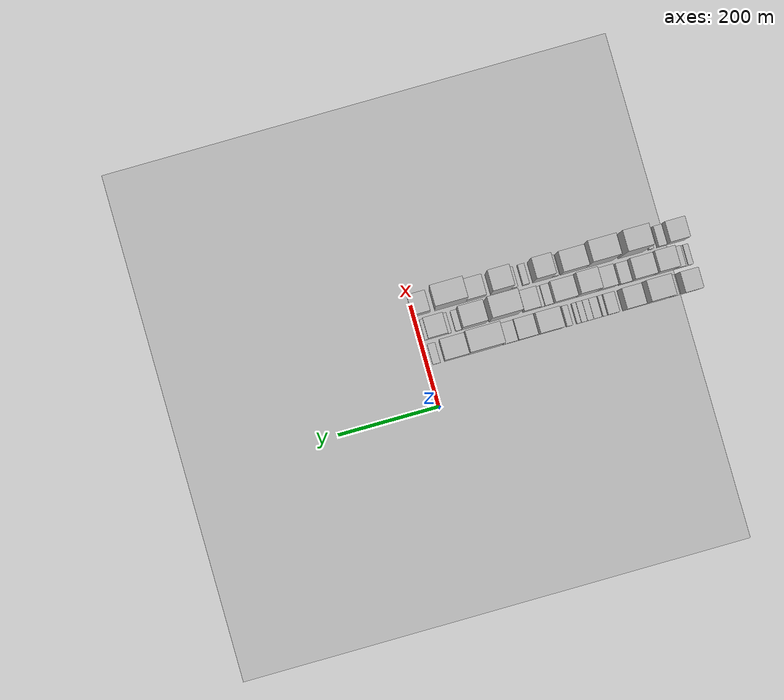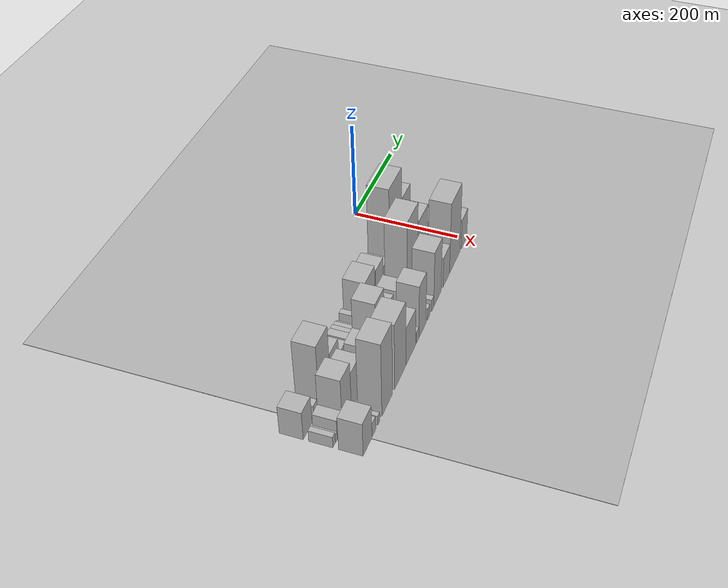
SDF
<sdf version="1.6">
 <world name="default">
  <include><name>ground_plane_1</name><uri>model://HANNAS_ground_plane</uri></include>
  <include>
   <name>ground_plane_2</name>
   <uri>model://HANNAS_ground_plane</uri>
   <pose>100 0 0  0 0 0</pose>
  </include>
  <model name="building_1">
   <static>1</static>
   <pose>100.0000 -518.3158 0 0.000000 0.000000 0.000000</pose>
   <link name="link">
    <pose>0 0 30.00 0 0 0</pose>
    <collision name="collision"><geometry><box><size>40.0000 35.3684 60.0000</size></box></geometry></collision>
    <visual name="visual">
     <cast_shadows>0</cast_shadows>
     <geometry><box><size>40.0000 35.3684 60.0000</size></box></geometry>
     <material>
      <script>
       <uri>model://HANNAS_wall/materials/scripts</uri>
       <uri>model://HANNAS_wall/materials/textures</uri>
       <name>vrc/HANNAS_wall</name>
      </script>
     </material>
    </visual>
   </link>
  </model>
  <model name="building_2">
   <static>1</static>
   <pose>100.0000 -485.6401 0 0.000000 0.000000 0.000000</pose>
   <link name="link">
    <pose>0 0 15.00 0 0 0</pose>
    <collision name="collision"><geometry><box><size>40.0000 15.9831 30.0000</size></box></geometry></collision>
    <visual name="visual">
     <cast_shadows>0</cast_shadows>
     <geometry><box><size>40.0000 15.9831 30.0000</size></box></geometry>
     <material>
      <script>
       <uri>model://HANNAS_wall/materials/scripts</uri>
       <uri>model://HANNAS_wall/materials/textures</uri>
       <name>vrc/HANNAS_wall</name>
      </script>
     </material>
    </visual>
   </link>
  </model>
  <model name="building_3">
   <static>1</static>
   <pose>100.0000 -447.0525 0 0.000000 0.000000 0.000000</pose>
   <link name="link">
    <pose>0 0 69.00 0 0 0</pose>
    <collision name="collision"><geometry><box><size>40.0000 47.1920 138.0000</size></box></geometry></collision>
    <visual name="visual">
     <cast_shadows>0</cast_shadows>
     <geometry><box><size>40.0000 47.1920 138.0000</size></box></geometry>
     <material>
      <script>
       <uri>model://HANNAS_wall/materials/scripts</uri>
       <uri>model://HANNAS_wall/materials/textures</uri>
       <name>vrc/HANNAS_wall</name>
      </script>
     </material>
    </visual>
   </link>
  </model>
  <model name="building_4">
   <static>1</static>
   <pose>100.0000 -404.3314 0 0.000000 0.000000 0.000000</pose>
   <link name="link">
    <pose>0 0 37.50 0 0 0</pose>
    <collision name="collision"><geometry><box><size>40.0000 38.2501 75.0000</size></box></geometry></collision>
    <visual name="visual">
     <cast_shadows>0</cast_shadows>
     <geometry><box><size>40.0000 38.2501 75.0000</size></box></geometry>
     <material>
      <script>
       <uri>model://HANNAS_wall/materials/scripts</uri>
       <uri>model://HANNAS_wall/materials/textures</uri>
       <name>vrc/HANNAS_wall</name>
      </script>
     </material>
    </visual>
   </link>
  </model>
  <model name="building_5">
   <static>1</static>
   <pose>100.0000 -364.0573 0 0.000000 0.000000 0.000000</pose>
   <link name="link">
    <pose>0 0 19.50 0 0 0</pose>
    <collision name="collision"><geometry><box><size>40.0000 22.2982 39.0000</size></box></geometry></collision>
    <visual name="visual">
     <cast_shadows>0</cast_shadows>
     <geometry><box><size>40.0000 22.2982 39.0000</size></box></geometry>
     <material>
      <script>
       <uri>model://HANNAS_wall/materials/scripts</uri>
       <uri>model://HANNAS_wall/materials/textures</uri>
       <name>vrc/HANNAS_wall</name>
      </script>
     </material>
    </visual>
   </link>
  </model>
  <model name="building_6">
   <static>1</static>
   <pose>100.0000 -348.7024 0 0.000000 0.000000 0.000000</pose>
   <link name="link">
    <pose>0 0 10.50 0 0 0</pose>
    <collision name="collision"><geometry><box><size>40.0000 8.4116 21.0000</size></box></geometry></collision>
    <visual name="visual">
     <cast_shadows>0</cast_shadows>
     <geometry><box><size>40.0000 8.4116 21.0000</size></box></geometry>
     <material>
      <script>
       <uri>model://HANNAS_wall/materials/scripts</uri>
       <uri>model://HANNAS_wall/materials/textures</uri>
       <name>vrc/HANNAS_wall</name>
      </script>
     </material>
    </visual>
   </link>
  </model>
  <model name="building_7">
   <static>1</static>
   <pose>100.0000 -333.5226 0 0.000000 0.000000 0.000000</pose>
   <link name="link">
    <pose>0 0 15.00 0 0 0</pose>
    <collision name="collision"><geometry><box><size>40.0000 15.9480 30.0000</size></box></geometry></collision>
    <visual name="visual">
     <cast_shadows>0</cast_shadows>
     <geometry><box><size>40.0000 15.9480 30.0000</size></box></geometry>
     <material>
      <script>
       <uri>model://HANNAS_wall/materials/scripts</uri>
       <uri>model://HANNAS_wall/materials/textures</uri>
       <name>vrc/HANNAS_wall</name>
      </script>
     </material>
    </visual>
   </link>
  </model>
  <model name="building_8">
   <static>1</static>
   <pose>100.0000 -319.4158 0 0.000000 0.000000 0.000000</pose>
   <link name="link">
    <pose>0 0 13.50 0 0 0</pose>
    <collision name="collision"><geometry><box><size>40.0000 12.2657 27.0000</size></box></geometry></collision>
    <visual name="visual">
     <cast_shadows>0</cast_shadows>
     <geometry><box><size>40.0000 12.2657 27.0000</size></box></geometry>
     <material>
      <script>
       <uri>model://HANNAS_wall/materials/scripts</uri>
       <uri>model://HANNAS_wall/materials/textures</uri>
       <name>vrc/HANNAS_wall</name>
      </script>
     </material>
    </visual>
   </link>
  </model>
  <model name="building_9">
   <static>1</static>
   <pose>100.0000 -307.5187 0 0.000000 0.000000 0.000000</pose>
   <link name="link">
    <pose>0 0 12.00 0 0 0</pose>
    <collision name="collision"><geometry><box><size>40.0000 11.5283 24.0000</size></box></geometry></collision>
    <visual name="visual">
     <cast_shadows>0</cast_shadows>
     <geometry><box><size>40.0000 11.5283 24.0000</size></box></geometry>
     <material>
      <script>
       <uri>model://HANNAS_wall/materials/scripts</uri>
       <uri>model://HANNAS_wall/materials/textures</uri>
       <name>vrc/HANNAS_wall</name>
      </script>
     </material>
    </visual>
   </link>
  </model>
  <model name="building_10">
   <static>1</static>
   <pose>100.0000 -297.6573 0 0.000000 0.000000 0.000000</pose>
   <link name="link">
    <pose>0 0 9.00 0 0 0</pose>
    <collision name="collision"><geometry><box><size>40.0000 8.1947 18.0000</size></box></geometry></collision>
    <visual name="visual">
     <cast_shadows>0</cast_shadows>
     <geometry><box><size>40.0000 8.1947 18.0000</size></box></geometry>
     <material>
      <script>
       <uri>model://HANNAS_wall/materials/scripts</uri>
       <uri>model://HANNAS_wall/materials/textures</uri>
       <name>vrc/HANNAS_wall</name>
      </script>
     </material>
    </visual>
   </link>
  </model>
  <model name="building_11">
   <static>1</static>
   <pose>100.0000 -278.9061 0 0.000000 0.000000 0.000000</pose>
   <link name="link">
    <pose>0 0 13.50 0 0 0</pose>
    <collision name="collision"><geometry><box><size>40.0000 11.3076 27.0000</size></box></geometry></collision>
    <visual name="visual">
     <cast_shadows>0</cast_shadows>
     <geometry><box><size>40.0000 11.3076 27.0000</size></box></geometry>
     <material>
      <script>
       <uri>model://HANNAS_wall/materials/scripts</uri>
       <uri>model://HANNAS_wall/materials/textures</uri>
       <name>vrc/HANNAS_wall</name>
      </script>
     </material>
    </visual>
   </link>
  </model>
  <model name="building_12">
   <static>1</static>
   <pose>100.0000 -240.6720 0 0.000000 0.000000 0.000000</pose>
   <link name="link">
    <pose>0 0 43.50 0 0 0</pose>
    <collision name="collision"><geometry><box><size>40.0000 47.1606 87.0000</size></box></geometry></collision>
    <visual name="visual">
     <cast_shadows>0</cast_shadows>
     <geometry><box><size>40.0000 47.1606 87.0000</size></box></geometry>
     <material>
      <script>
       <uri>model://HANNAS_wall/materials/scripts</uri>
       <uri>model://HANNAS_wall/materials/textures</uri>
       <name>vrc/HANNAS_wall</name>
      </script>
     </material>
    </visual>
   </link>
  </model>
  <model name="building_13">
   <static>1</static>
   <pose>100.0000 -195.0961 0 0.000000 0.000000 0.000000</pose>
   <link name="link">
    <pose>0 0 36.00 0 0 0</pose>
    <collision name="collision"><geometry><box><size>40.0000 37.9914 72.0000</size></box></geometry></collision>
    <visual name="visual">
     <cast_shadows>0</cast_shadows>
     <geometry><box><size>40.0000 37.9914 72.0000</size></box></geometry>
     <material>
      <script>
       <uri>model://HANNAS_wall/materials/scripts</uri>
       <uri>model://HANNAS_wall/materials/textures</uri>
       <name>vrc/HANNAS_wall</name>
      </script>
     </material>
    </visual>
   </link>
  </model>
  <model name="building_14">
   <static>1</static>
   <pose>100.0000 -161.9064 0 0.000000 0.000000 0.000000</pose>
   <link name="link">
    <pose>0 0 24.00 0 0 0</pose>
    <collision name="collision"><geometry><box><size>40.0000 28.3878 48.0000</size></box></geometry></collision>
    <visual name="visual">
     <cast_shadows>0</cast_shadows>
     <geometry><box><size>40.0000 28.3878 48.0000</size></box></geometry>
     <material>
      <script>
       <uri>model://HANNAS_wall/materials/scripts</uri>
       <uri>model://HANNAS_wall/materials/textures</uri>
       <name>vrc/HANNAS_wall</name>
      </script>
     </material>
    </visual>
   </link>
  </model>
  <model name="building_15">
   <static>1</static>
   <pose>100.0000 -111.3881 0 0.000000 0.000000 0.000000</pose>
   <link name="link">
    <pose>0 0 97.50 0 0 0</pose>
    <collision name="collision"><geometry><box><size>40.0000 64.6489 195.0000</size></box></geometry></collision>
    <visual name="visual">
     <cast_shadows>0</cast_shadows>
     <geometry><box><size>40.0000 64.6489 195.0000</size></box></geometry>
     <material>
      <script>
       <uri>model://HANNAS_wall/materials/scripts</uri>
       <uri>model://HANNAS_wall/materials/textures</uri>
       <name>vrc/HANNAS_wall</name>
      </script>
     </material>
    </visual>
   </link>
  </model>
  <model name="building_16">
   <static>1</static>
   <pose>100.0000 -55.8032 0 0.000000 0.000000 0.000000</pose>
   <link name="link">
    <pose>0 0 63.00 0 0 0</pose>
    <collision name="collision"><geometry><box><size>40.0000 46.5208 126.0000</size></box></geometry></collision>
    <visual name="visual">
     <cast_shadows>0</cast_shadows>
     <geometry><box><size>40.0000 46.5208 126.0000</size></box></geometry>
     <material>
      <script>
       <uri>model://HANNAS_wall/materials/scripts</uri>
       <uri>model://HANNAS_wall/materials/textures</uri>
       <name>vrc/HANNAS_wall</name>
      </script>
     </material>
    </visual>
   </link>
  </model>
  <model name="building_17">
   <static>1</static>
   <pose>100.0000 -16.9928 0 0.000000 0.000000 0.000000</pose>
   <link name="link">
    <pose>0 0 15.00 0 0 0</pose>
    <collision name="collision"><geometry><box><size>40.0000 15.0999 30.0000</size></box></geometry></collision>
    <visual name="visual">
     <cast_shadows>0</cast_shadows>
     <geometry><box><size>40.0000 15.0999 30.0000</size></box></geometry>
     <material>
      <script>
       <uri>model://HANNAS_wall/materials/scripts</uri>
       <uri>model://HANNAS_wall/materials/textures</uri>
       <name>vrc/HANNAS_wall</name>
      </script>
     </material>
    </visual>
   </link>
  </model>
  <model name="building_36">
   <static>1</static>
   <pose>149.0000 -530.9297 0 0.000000 0.000000 0.000000</pose>
   <link name="link">
    <pose>0 0 12.00 0 0 0</pose>
    <collision name="collision"><geometry><box><size>40.0000 10.1405 24.0000</size></box></geometry></collision>
    <visual name="visual">
     <cast_shadows>0</cast_shadows>
     <geometry><box><size>40.0000 10.1405 24.0000</size></box></geometry>
     <material>
      <script>
       <uri>model://HANNAS_wall/materials/scripts</uri>
       <uri>model://HANNAS_wall/materials/textures</uri>
       <name>vrc/HANNAS_wall</name>
      </script>
     </material>
    </visual>
   </link>
  </model>
  <model name="building_37">
   <static>1</static>
   <pose>149.0000 -522.1715 0 0.000000 0.000000 0.000000</pose>
   <link name="link">
    <pose>0 0 9.00 0 0 0</pose>
    <collision name="collision"><geometry><box><size>40.0000 7.3759 18.0000</size></box></geometry></collision>
    <visual name="visual">
     <cast_shadows>0</cast_shadows>
     <geometry><box><size>40.0000 7.3759 18.0000</size></box></geometry>
     <material>
      <script>
       <uri>model://HANNAS_wall/materials/scripts</uri>
       <uri>model://HANNAS_wall/materials/textures</uri>
       <name>vrc/HANNAS_wall</name>
      </script>
     </material>
    </visual>
   </link>
  </model>
  <model name="building_38">
   <static>1</static>
   <pose>149.0000 -507.6556 0 0.000000 0.000000 0.000000</pose>
   <link name="link">
    <pose>0 0 21.00 0 0 0</pose>
    <collision name="collision"><geometry><box><size>40.0000 21.6560 42.0000</size></box></geometry></collision>
    <visual name="visual">
     <cast_shadows>0</cast_shadows>
     <geometry><box><size>40.0000 21.6560 42.0000</size></box></geometry>
     <material>
      <script>
       <uri>model://HANNAS_wall/materials/scripts</uri>
       <uri>model://HANNAS_wall/materials/textures</uri>
       <name>vrc/HANNAS_wall</name>
      </script>
     </material>
    </visual>
   </link>
  </model>
  <model name="building_39">
   <static>1</static>
   <pose>149.0000 -477.2987 0 0.000000 0.000000 0.000000</pose>
   <link name="link">
    <pose>0 0 54.00 0 0 0</pose>
    <collision name="collision"><geometry><box><size>40.0000 39.0578 108.0000</size></box></geometry></collision>
    <visual name="visual">
     <cast_shadows>0</cast_shadows>
     <geometry><box><size>40.0000 39.0578 108.0000</size></box></geometry>
     <material>
      <script>
       <uri>model://HANNAS_wall/materials/scripts</uri>
       <uri>model://HANNAS_wall/materials/textures</uri>
       <name>vrc/HANNAS_wall</name>
      </script>
     </material>
    </visual>
   </link>
  </model>
  <model name="building_40">
   <static>1</static>
   <pose>149.0000 -435.8750 0 0.000000 0.000000 0.000000</pose>
   <link name="link">
    <pose>0 0 42.00 0 0 0</pose>
    <collision name="collision"><geometry><box><size>40.0000 43.7897 84.0000</size></box></geometry></collision>
    <visual name="visual">
     <cast_shadows>0</cast_shadows>
     <geometry><box><size>40.0000 43.7897 84.0000</size></box></geometry>
     <material>
      <script>
       <uri>model://HANNAS_wall/materials/scripts</uri>
       <uri>model://HANNAS_wall/materials/textures</uri>
       <name>vrc/HANNAS_wall</name>
      </script>
     </material>
    </visual>
   </link>
  </model>
  <model name="building_41">
   <static>1</static>
   <pose>149.0000 -402.3837 0 0.000000 0.000000 0.000000</pose>
   <link name="link">
    <pose>0 0 21.00 0 0 0</pose>
    <collision name="collision"><geometry><box><size>40.0000 23.1930 42.0000</size></box></geometry></collision>
    <visual name="visual">
     <cast_shadows>0</cast_shadows>
     <geometry><box><size>40.0000 23.1930 42.0000</size></box></geometry>
     <material>
      <script>
       <uri>model://HANNAS_wall/materials/scripts</uri>
       <uri>model://HANNAS_wall/materials/textures</uri>
       <name>vrc/HANNAS_wall</name>
      </script>
     </material>
    </visual>
   </link>
  </model>
  <model name="building_42">
   <static>1</static>
   <pose>149.0000 -365.0991 0 0.000000 0.000000 0.000000</pose>
   <link name="link">
    <pose>0 0 33.00 0 0 0</pose>
    <collision name="collision"><geometry><box><size>40.0000 37.3762 66.0000</size></box></geometry></collision>
    <visual name="visual">
     <cast_shadows>0</cast_shadows>
     <geometry><box><size>40.0000 37.3762 66.0000</size></box></geometry>
     <material>
      <script>
       <uri>model://HANNAS_wall/materials/scripts</uri>
       <uri>model://HANNAS_wall/materials/textures</uri>
       <name>vrc/HANNAS_wall</name>
      </script>
     </material>
    </visual>
   </link>
  </model>
  <model name="building_43">
   <static>1</static>
   <pose>149.0000 -325.8375 0 0.000000 0.000000 0.000000</pose>
   <link name="link">
    <pose>0 0 64.50 0 0 0</pose>
    <collision name="collision"><geometry><box><size>40.0000 41.1471 129.0000</size></box></geometry></collision>
    <visual name="visual">
     <cast_shadows>0</cast_shadows>
     <geometry><box><size>40.0000 41.1471 129.0000</size></box></geometry>
     <material>
      <script>
       <uri>model://HANNAS_wall/materials/scripts</uri>
       <uri>model://HANNAS_wall/materials/textures</uri>
       <name>vrc/HANNAS_wall</name>
      </script>
     </material>
    </visual>
   </link>
  </model>
  <model name="building_44">
   <static>1</static>
   <pose>149.0000 -282.9376 0 0.000000 0.000000 0.000000</pose>
   <link name="link">
    <pose>0 0 37.50 0 0 0</pose>
    <collision name="collision"><geometry><box><size>40.0000 44.6527 75.0000</size></box></geometry></collision>
    <visual name="visual">
     <cast_shadows>0</cast_shadows>
     <geometry><box><size>40.0000 44.6527 75.0000</size></box></geometry>
     <material>
      <script>
       <uri>model://HANNAS_wall/materials/scripts</uri>
       <uri>model://HANNAS_wall/materials/textures</uri>
       <name>vrc/HANNAS_wall</name>
      </script>
     </material>
    </visual>
   </link>
  </model>
  <model name="building_45">
   <static>1</static>
   <pose>149.0000 -252.1893 0 0.000000 0.000000 0.000000</pose>
   <link name="link">
    <pose>0 0 16.50 0 0 0</pose>
    <collision name="collision"><geometry><box><size>40.0000 16.8437 33.0000</size></box></geometry></collision>
    <visual name="visual">
     <cast_shadows>0</cast_shadows>
     <geometry><box><size>40.0000 16.8437 33.0000</size></box></geometry>
     <material>
      <script>
       <uri>model://HANNAS_wall/materials/scripts</uri>
       <uri>model://HANNAS_wall/materials/textures</uri>
       <name>vrc/HANNAS_wall</name>
      </script>
     </material>
    </visual>
   </link>
  </model>
  <model name="building_46">
   <static>1</static>
   <pose>149.0000 -239.0738 0 0.000000 0.000000 0.000000</pose>
   <link name="link">
    <pose>0 0 10.50 0 0 0</pose>
    <collision name="collision"><geometry><box><size>40.0000 9.3873 21.0000</size></box></geometry></collision>
    <visual name="visual">
     <cast_shadows>0</cast_shadows>
     <geometry><box><size>40.0000 9.3873 21.0000</size></box></geometry>
     <material>
      <script>
       <uri>model://HANNAS_wall/materials/scripts</uri>
       <uri>model://HANNAS_wall/materials/textures</uri>
       <name>vrc/HANNAS_wall</name>
      </script>
     </material>
    </visual>
   </link>
  </model>
  <model name="building_47">
   <static>1</static>
   <pose>149.0000 -217.9441 0 0.000000 0.000000 0.000000</pose>
   <link name="link">
    <pose>0 0 28.50 0 0 0</pose>
    <collision name="collision"><geometry><box><size>40.0000 32.8720 57.0000</size></box></geometry></collision>
    <visual name="visual">
     <cast_shadows>0</cast_shadows>
     <geometry><box><size>40.0000 32.8720 57.0000</size></box></geometry>
     <material>
      <script>
       <uri>model://HANNAS_wall/materials/scripts</uri>
       <uri>model://HANNAS_wall/materials/textures</uri>
       <name>vrc/HANNAS_wall</name>
      </script>
     </material>
    </visual>
   </link>
  </model>
  <model name="building_48">
   <static>1</static>
   <pose>149.0000 -163.4722 0 0.000000 0.000000 0.000000</pose>
   <link name="link">
    <pose>0 0 87.00 0 0 0</pose>
    <collision name="collision"><geometry><box><size>40.0000 58.0720 174.0000</size></box></geometry></collision>
    <visual name="visual">
     <cast_shadows>0</cast_shadows>
     <geometry><box><size>40.0000 58.0720 174.0000</size></box></geometry>
     <material>
      <script>
       <uri>model://HANNAS_wall/materials/scripts</uri>
       <uri>model://HANNAS_wall/materials/textures</uri>
       <name>vrc/HANNAS_wall</name>
      </script>
     </material>
    </visual>
   </link>
  </model>
  <model name="building_49">
   <static>1</static>
   <pose>149.0000 -104.3974 0 0.000000 0.000000 0.000000</pose>
   <link name="link">
    <pose>0 0 64.50 0 0 0</pose>
    <collision name="collision"><geometry><box><size>40.0000 48.0775 129.0000</size></box></geometry></collision>
    <visual name="visual">
     <cast_shadows>0</cast_shadows>
     <geometry><box><size>40.0000 48.0775 129.0000</size></box></geometry>
     <material>
      <script>
       <uri>model://HANNAS_wall/materials/scripts</uri>
       <uri>model://HANNAS_wall/materials/textures</uri>
       <name>vrc/HANNAS_wall</name>
      </script>
     </material>
    </visual>
   </link>
  </model>
  <model name="building_50">
   <static>1</static>
   <pose>149.0000 -74.3201 0 0.000000 0.000000 0.000000</pose>
   <link name="link">
    <pose>0 0 13.50 0 0 0</pose>
    <collision name="collision"><geometry><box><size>40.0000 12.0771 27.0000</size></box></geometry></collision>
    <visual name="visual">
     <cast_shadows>0</cast_shadows>
     <geometry><box><size>40.0000 12.0771 27.0000</size></box></geometry>
     <material>
      <script>
       <uri>model://HANNAS_wall/materials/scripts</uri>
       <uri>model://HANNAS_wall/materials/textures</uri>
       <name>vrc/HANNAS_wall</name>
      </script>
     </material>
    </visual>
   </link>
  </model>
  <model name="building_51">
   <static>1</static>
   <pose>149.0000 -56.5485 0 0.000000 0.000000 0.000000</pose>
   <link name="link">
    <pose>0 0 7.50 0 0 0</pose>
    <collision name="collision"><geometry><box><size>40.0000 7.4661 15.0000</size></box></geometry></collision>
    <visual name="visual">
     <cast_shadows>0</cast_shadows>
     <geometry><box><size>40.0000 7.4661 15.0000</size></box></geometry>
     <material>
      <script>
       <uri>model://HANNAS_wall/materials/scripts</uri>
       <uri>model://HANNAS_wall/materials/textures</uri>
       <name>vrc/HANNAS_wall</name>
      </script>
     </material>
    </visual>
   </link>
  </model>
  <model name="building_52">
   <static>1</static>
   <pose>149.0000 -33.6352 0 0.000000 0.000000 0.000000</pose>
   <link name="link">
    <pose>0 0 33.00 0 0 0</pose>
    <collision name="collision"><geometry><box><size>40.0000 38.3605 66.0000</size></box></geometry></collision>
    <visual name="visual">
     <cast_shadows>0</cast_shadows>
     <geometry><box><size>40.0000 38.3605 66.0000</size></box></geometry>
     <material>
      <script>
       <uri>model://HANNAS_wall/materials/scripts</uri>
       <uri>model://HANNAS_wall/materials/textures</uri>
       <name>vrc/HANNAS_wall</name>
      </script>
     </material>
    </visual>
   </link>
  </model>
  <model name="building_53">
   <static>1</static>
   <pose>149.0000 -11.0670 0 0.000000 0.000000 0.000000</pose>
   <link name="link">
    <pose>0 0 7.50 0 0 0</pose>
    <collision name="collision"><geometry><box><size>40.0000 6.7761 15.0000</size></box></geometry></collision>
    <visual name="visual">
     <cast_shadows>0</cast_shadows>
     <geometry><box><size>40.0000 6.7761 15.0000</size></box></geometry>
     <material>
      <script>
       <uri>model://HANNAS_wall/materials/scripts</uri>
       <uri>model://HANNAS_wall/materials/textures</uri>
       <name>vrc/HANNAS_wall</name>
      </script>
     </material>
    </visual>
   </link>
  </model>
  <model name="building_72">
   <static>1</static>
   <pose>198.0000 -516.6634 0 0.000000 0.000000 0.000000</pose>
   <link name="link">
    <pose>0 0 36.00 0 0 0</pose>
    <collision name="collision"><geometry><box><size>40.0000 38.6731 72.0000</size></box></geometry></collision>
    <visual name="visual">
     <cast_shadows>0</cast_shadows>
     <geometry><box><size>40.0000 38.6731 72.0000</size></box></geometry>
     <material>
      <script>
       <uri>model://HANNAS_wall/materials/scripts</uri>
       <uri>model://HANNAS_wall/materials/textures</uri>
       <name>vrc/HANNAS_wall</name>
      </script>
     </material>
    </visual>
   </link>
  </model>
  <model name="building_73">
   <static>1</static>
   <pose>198.0000 -489.1858 0 0.000000 0.000000 0.000000</pose>
   <link name="link">
    <pose>0 0 15.00 0 0 0</pose>
    <collision name="collision"><geometry><box><size>40.0000 16.2822 30.0000</size></box></geometry></collision>
    <visual name="visual">
     <cast_shadows>0</cast_shadows>
     <geometry><box><size>40.0000 16.2822 30.0000</size></box></geometry>
     <material>
      <script>
       <uri>model://HANNAS_wall/materials/scripts</uri>
       <uri>model://HANNAS_wall/materials/textures</uri>
       <name>vrc/HANNAS_wall</name>
      </script>
     </material>
    </visual>
   </link>
  </model>
  <model name="building_74">
   <static>1</static>
   <pose>198.0000 -467.6946 0 0.000000 0.000000 0.000000</pose>
   <link name="link">
    <pose>0 0 10.50 0 0 0</pose>
    <collision name="collision"><geometry><box><size>40.0000 8.7001 21.0000</size></box></geometry></collision>
    <visual name="visual">
     <cast_shadows>0</cast_shadows>
     <geometry><box><size>40.0000 8.7001 21.0000</size></box></geometry>
     <material>
      <script>
       <uri>model://HANNAS_wall/materials/scripts</uri>
       <uri>model://HANNAS_wall/materials/textures</uri>
       <name>vrc/HANNAS_wall</name>
      </script>
     </material>
    </visual>
   </link>
  </model>
  <model name="building_75">
   <static>1</static>
   <pose>198.0000 -428.6424 0 0.000000 0.000000 0.000000</pose>
   <link name="link">
    <pose>0 0 79.50 0 0 0</pose>
    <collision name="collision"><geometry><box><size>40.0000 49.4044 159.0000</size></box></geometry></collision>
    <visual name="visual">
     <cast_shadows>0</cast_shadows>
     <geometry><box><size>40.0000 49.4044 159.0000</size></box></geometry>
     <material>
      <script>
       <uri>model://HANNAS_wall/materials/scripts</uri>
       <uri>model://HANNAS_wall/materials/textures</uri>
       <name>vrc/HANNAS_wall</name>
      </script>
     </material>
    </visual>
   </link>
  </model>
  <model name="building_76">
   <static>1</static>
   <pose>198.0000 -366.8489 0 0.000000 0.000000 0.000000</pose>
   <link name="link">
    <pose>0 0 72.00 0 0 0</pose>
    <collision name="collision"><geometry><box><size>40.0000 54.1825 144.0000</size></box></geometry></collision>
    <visual name="visual">
     <cast_shadows>0</cast_shadows>
     <geometry><box><size>40.0000 54.1825 144.0000</size></box></geometry>
     <material>
      <script>
       <uri>model://HANNAS_wall/materials/scripts</uri>
       <uri>model://HANNAS_wall/materials/textures</uri>
       <name>vrc/HANNAS_wall</name>
      </script>
     </material>
    </visual>
   </link>
  </model>
  <model name="building_77">
   <static>1</static>
   <pose>198.0000 -314.6154 0 0.000000 0.000000 0.000000</pose>
   <link name="link">
    <pose>0 0 42.00 0 0 0</pose>
    <collision name="collision"><geometry><box><size>40.0000 50.2844 84.0000</size></box></geometry></collision>
    <visual name="visual">
     <cast_shadows>0</cast_shadows>
     <geometry><box><size>40.0000 50.2844 84.0000</size></box></geometry>
     <material>
      <script>
       <uri>model://HANNAS_wall/materials/scripts</uri>
       <uri>model://HANNAS_wall/materials/textures</uri>
       <name>vrc/HANNAS_wall</name>
      </script>
     </material>
    </visual>
   </link>
  </model>
  <model name="building_78">
   <static>1</static>
   <pose>198.0000 -279.0936 0 0.000000 0.000000 0.000000</pose>
   <link name="link">
    <pose>0 0 13.50 0 0 0</pose>
    <collision name="collision"><geometry><box><size>40.0000 12.7592 27.0000</size></box></geometry></collision>
    <visual name="visual">
     <cast_shadows>0</cast_shadows>
     <geometry><box><size>40.0000 12.7592 27.0000</size></box></geometry>
     <material>
      <script>
       <uri>model://HANNAS_wall/materials/scripts</uri>
       <uri>model://HANNAS_wall/materials/textures</uri>
       <name>vrc/HANNAS_wall</name>
      </script>
     </material>
    </visual>
   </link>
  </model>
  <model name="building_79">
   <static>1</static>
   <pose>198.0000 -253.9656 0 0.000000 0.000000 0.000000</pose>
   <link name="link">
    <pose>0 0 58.50 0 0 0</pose>
    <collision name="collision"><geometry><box><size>40.0000 37.4968 117.0000</size></box></geometry></collision>
    <visual name="visual">
     <cast_shadows>0</cast_shadows>
     <geometry><box><size>40.0000 37.4968 117.0000</size></box></geometry>
     <material>
      <script>
       <uri>model://HANNAS_wall/materials/scripts</uri>
       <uri>model://HANNAS_wall/materials/textures</uri>
       <name>vrc/HANNAS_wall</name>
      </script>
     </material>
    </visual>
   </link>
  </model>
  <model name="building_80">
   <static>1</static>
   <pose>198.0000 -220.9035 0 0.000000 0.000000 0.000000</pose>
   <link name="link">
    <pose>0 0 13.50 0 0 0</pose>
    <collision name="collision"><geometry><box><size>40.0000 12.6274 27.0000</size></box></geometry></collision>
    <visual name="visual">
     <cast_shadows>0</cast_shadows>
     <geometry><box><size>40.0000 12.6274 27.0000</size></box></geometry>
     <material>
      <script>
       <uri>model://HANNAS_wall/materials/scripts</uri>
       <uri>model://HANNAS_wall/materials/textures</uri>
       <name>vrc/HANNAS_wall</name>
      </script>
     </material>
    </visual>
   </link>
  </model>
  <model name="building_81">
   <static>1</static>
   <pose>198.0000 -198.7144 0 0.000000 0.000000 0.000000</pose>
   <link name="link">
    <pose>0 0 13.50 0 0 0</pose>
    <collision name="collision"><geometry><box><size>40.0000 11.7507 27.0000</size></box></geometry></collision>
    <visual name="visual">
     <cast_shadows>0</cast_shadows>
     <geometry><box><size>40.0000 11.7507 27.0000</size></box></geometry>
     <material>
      <script>
       <uri>model://HANNAS_wall/materials/scripts</uri>
       <uri>model://HANNAS_wall/materials/textures</uri>
       <name>vrc/HANNAS_wall</name>
      </script>
     </material>
    </visual>
   </link>
  </model>
  <model name="building_82">
   <static>1</static>
   <pose>198.0000 -172.1056 0 0.000000 0.000000 0.000000</pose>
   <link name="link">
    <pose>0 0 61.50 0 0 0</pose>
    <collision name="collision"><geometry><box><size>40.0000 41.4671 123.0000</size></box></geometry></collision>
    <visual name="visual">
     <cast_shadows>0</cast_shadows>
     <geometry><box><size>40.0000 41.4671 123.0000</size></box></geometry>
     <material>
      <script>
       <uri>model://HANNAS_wall/materials/scripts</uri>
       <uri>model://HANNAS_wall/materials/textures</uri>
       <name>vrc/HANNAS_wall</name>
      </script>
     </material>
    </visual>
   </link>
  </model>
  <model name="building_83">
   <static>1</static>
   <pose>198.0000 -122.1959 0 0.000000 0.000000 0.000000</pose>
   <link name="link">
    <pose>0 0 34.50 0 0 0</pose>
    <collision name="collision"><geometry><box><size>40.0000 38.3523 69.0000</size></box></geometry></collision>
    <visual name="visual">
     <cast_shadows>0</cast_shadows>
     <geometry><box><size>40.0000 38.3523 69.0000</size></box></geometry>
     <material>
      <script>
       <uri>model://HANNAS_wall/materials/scripts</uri>
       <uri>model://HANNAS_wall/materials/textures</uri>
       <name>vrc/HANNAS_wall</name>
      </script>
     </material>
    </visual>
   </link>
  </model>
  <model name="building_84">
   <static>1</static>
   <pose>198.0000 -72.0944 0 0.000000 0.000000 0.000000</pose>
   <link name="link">
    <pose>0 0 79.50 0 0 0</pose>
    <collision name="collision"><geometry><box><size>40.0000 61.8507 159.0000</size></box></geometry></collision>
    <visual name="visual">
     <cast_shadows>0</cast_shadows>
     <geometry><box><size>40.0000 61.8507 159.0000</size></box></geometry>
     <material>
      <script>
       <uri>model://HANNAS_wall/materials/scripts</uri>
       <uri>model://HANNAS_wall/materials/textures</uri>
       <name>vrc/HANNAS_wall</name>
      </script>
     </material>
    </visual>
   </link>
  </model>
  <model name="building_85">
   <static>1</static>
   <pose>198.0000 -14.7302 0 0.000000 0.000000 0.000000</pose>
   <link name="link">
    <pose>0 0 34.50 0 0 0</pose>
    <collision name="collision"><geometry><box><size>40.0000 34.8779 69.0000</size></box></geometry></collision>
    <visual name="visual">
     <cast_shadows>0</cast_shadows>
     <geometry><box><size>40.0000 34.8779 69.0000</size></box></geometry>
     <material>
      <script>
       <uri>model://HANNAS_wall/materials/scripts</uri>
       <uri>model://HANNAS_wall/materials/textures</uri>
       <name>vrc/HANNAS_wall</name>
      </script>
     </material>
    </visual>
   </link>
  </model>
 </world>
</sdf>
